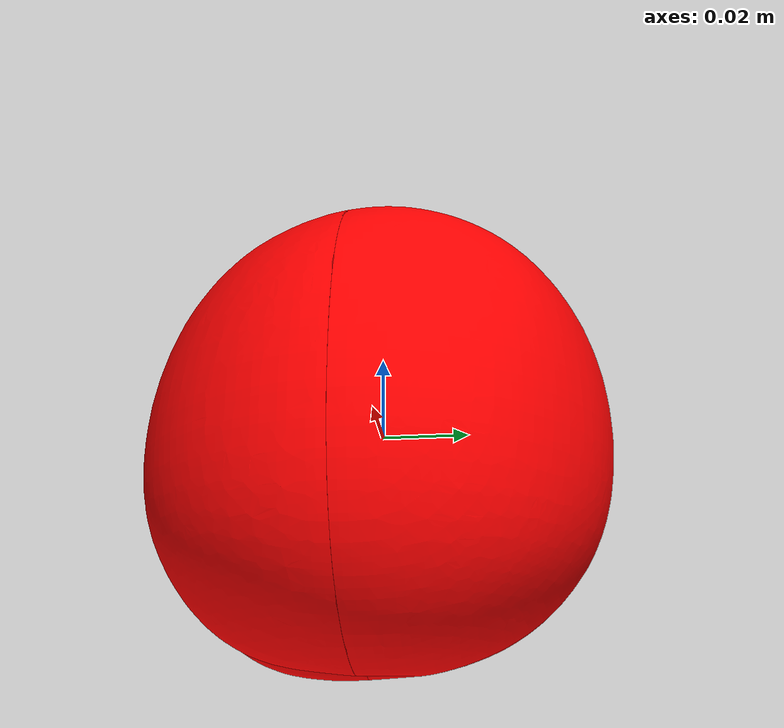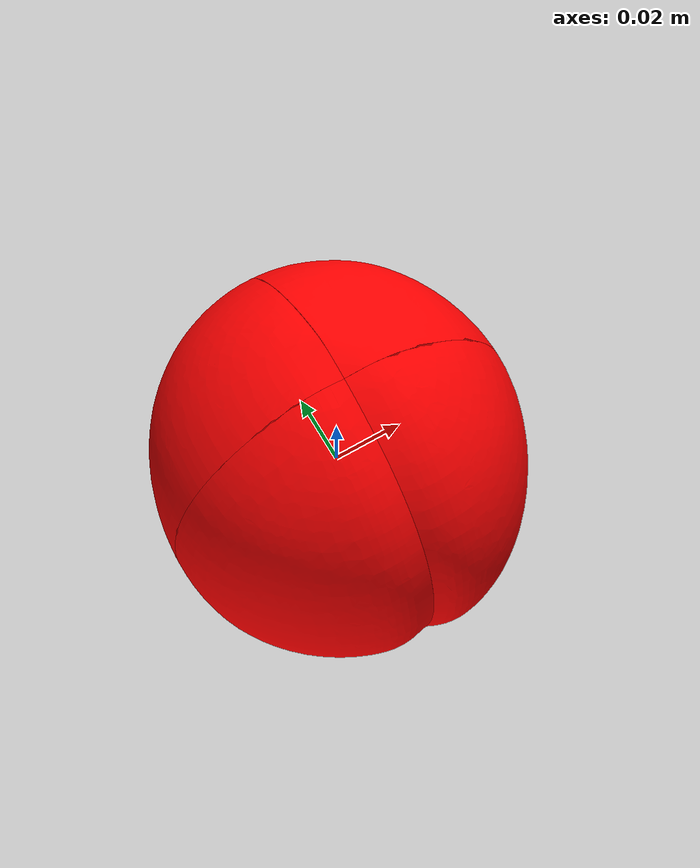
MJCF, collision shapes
<?xml version="1.0" ?>
<mujoco model="yellow_peach">
	<compiler meshdir="yellow_peach/meshes" texturedir="yellow_peach/textures" angle="radian" autolimits="true" balanceinertia="true" boundmass="0.000001" boundinertia="0.000001"/>
	<default>
		<default class="visual">
			<geom contype="0" conaffinity="0"/>
		</default>
		<default class="collision">
			<geom rgba="1.0 0.0 0.0 0.0"/>
		</default>
	</default>
	<asset>
		<mesh name="YellowPeachSeed" file="obj/YellowPeachSeed.obj" scale="1.0 1.0 1.0"/>
		<mesh name="YellowPeachSeed_001" file="stl/YellowPeachSeed_001.stl" scale="1.0 1.0 1.0"/>
		<mesh name="YellowPeachPeel" file="obj/YellowPeachPeel.obj" scale="1.0 1.0 1.0"/>
		<mesh name="YellowPeachPeel_001" file="stl/YellowPeachPeel_001.stl" scale="1.0 1.0 1.0"/>
		<mesh name="YellowPeachPeel_002" file="stl/YellowPeachPeel_002.stl" scale="1.0 1.0 1.0"/>
		<mesh name="YellowPeachPeel_003" file="stl/YellowPeachPeel_003.stl" scale="1.0 1.0 1.0"/>
		<mesh name="YellowPeachPeel_004" file="stl/YellowPeachPeel_004.stl" scale="1.0 1.0 1.0"/>
		<mesh name="YellowPeachFlesh" file="stl/YellowPeachFlesh.stl" scale="1.0 1.0 1.0"/>
		<mesh name="YellowPeachFlesh_001" file="stl/YellowPeachFlesh_001.stl" scale="1.0 1.0 1.0"/>
		<mesh name="YellowPeachFlesh_002" file="stl/YellowPeachFlesh_002.stl" scale="1.0 1.0 1.0"/>
		<mesh name="YellowPeachFlesh_003" file="stl/YellowPeachFlesh_003.stl" scale="1.0 1.0 1.0"/>
		<mesh name="YellowPeachFlesh_004" file="stl/YellowPeachFlesh_004.stl" scale="1.0 1.0 1.0"/>
		<material name="M_YellowPeachSeed" texture="T_YellowPeachSeed"/>
		<material name="M_YellowPeachPeel" texture="T_YellowPeachPeel"/>
		<material name="M_YellowPeachFlesh" rgba="0.8203999996185303 0.6920999884605408 0.32589998841285706 1.0" emission="0.0"/>
		<texture name="T_YellowPeachSeed" type="2d" file="T_YellowPeachSeed.png"/>
		<texture name="T_YellowPeachPeel" type="2d" file="T_YellowPeachPeel.png"/>
	</asset>
	<worldbody>
		<body name="yellow_peach" pos="0.0 0.0 0.0" quat="1.0 0.0 0.0 0.0">
			<body name="yellow_peach_seed" pos="0.0 0.0 0.0" quat="1.0 0.0 0.0 0.0">
				<inertial mass="0.016849905252456665" pos="-0.0009083405020646751 0.00046362692955881357 -0.0017745678778737783" quat="-0.0115816043689847 -0.6922917366027832 0.06513763964176178 0.7185785174369812" diaginertia="1.2242736602274817e-06 2.8836348064942285e-06 3.5530067634681473e-06"/>
				<geom name="YellowPeachSeed" type="mesh" pos="0.0 0.0 0.0" quat="1.0 0.0 0.0 0.0" mesh="YellowPeachSeed" material="M_YellowPeachSeed" class="visual"/>
				<geom name="YellowPeachSeed_001" type="mesh" pos="0.0 0.0 0.0" quat="1.0 0.0 0.0 0.0" mesh="YellowPeachSeed_001" class="collision"/>
			</body>
			<body name="yellow_peach_flesh" pos="0.0 0.0 0.0" quat="1.0 0.0 0.0 0.0">
				<inertial mass="0.5373390316963196" pos="-5.536739990930073e-05 -0.00045907183084636927 -0.002324489876627922" quat="0.7192644476890564 -0.01957964524626732 -0.6680206060409546 0.18979918956756592" diaginertia="0.0005184098845347762 0.0005625914200209081 0.000574205128941685"/>
				<geom name="YellowPeachFlesh" type="mesh" pos="0.0 0.0 0.0" quat="1.0 0.0 0.0 0.0" mesh="YellowPeachFlesh" material="M_YellowPeachFlesh" class="visual"/>
				<geom name="YellowPeachFlesh_001" type="mesh" pos="0.0 0.0 0.0" quat="1.0 0.0 0.0 0.0" mesh="YellowPeachFlesh_001" class="collision"/>
				<geom name="YellowPeachFlesh_002" type="mesh" pos="0.0 0.0 0.0" quat="1.0 0.0 0.0 0.0" mesh="YellowPeachFlesh_002" class="collision"/>
				<geom name="YellowPeachFlesh_003" type="mesh" pos="0.0 0.0 0.0" quat="1.0 0.0 0.0 0.0" mesh="YellowPeachFlesh_003" class="collision"/>
				<geom name="YellowPeachFlesh_004" type="mesh" pos="0.0 0.0 0.0" quat="1.0 0.0 0.0 0.0" mesh="YellowPeachFlesh_004" class="collision"/>
			</body>
			<body name="yellow_peach_peel" pos="0.0 0.0 0.0" quat="1.0 0.0 0.0 0.0">
				<inertial mass="1.149436116218567" pos="-5.8752168115461245e-05 -0.0004791481769643724 -0.0023714061826467514" quat="0.7192742824554443 -0.019662583246827126 -0.6679708957672119 0.1899283528327942" diaginertia="0.001160025130957365 0.0012588778045028448 0.0012848626356571913"/>
				<geom name="YellowPeachPeel" type="mesh" pos="0.0 0.0 0.0" quat="1.0 0.0 0.0 0.0" mesh="YellowPeachPeel" material="M_YellowPeachPeel" class="visual"/>
				<geom name="YellowPeachPeel_001" type="mesh" pos="0.0 0.0 0.0" quat="1.0 0.0 0.0 0.0" mesh="YellowPeachPeel_001" class="collision"/>
				<geom name="YellowPeachPeel_002" type="mesh" pos="0.0 0.0 0.0" quat="1.0 0.0 0.0 0.0" mesh="YellowPeachPeel_002" class="collision"/>
				<geom name="YellowPeachPeel_003" type="mesh" pos="0.0 0.0 0.0" quat="1.0 0.0 0.0 0.0" mesh="YellowPeachPeel_003" class="collision"/>
				<geom name="YellowPeachPeel_004" type="mesh" pos="0.0 0.0 0.0" quat="1.0 0.0 0.0 0.0" mesh="YellowPeachPeel_004" class="collision"/>
			</body>
		</body>
	</worldbody>
	<equality/>
</mujoco>
